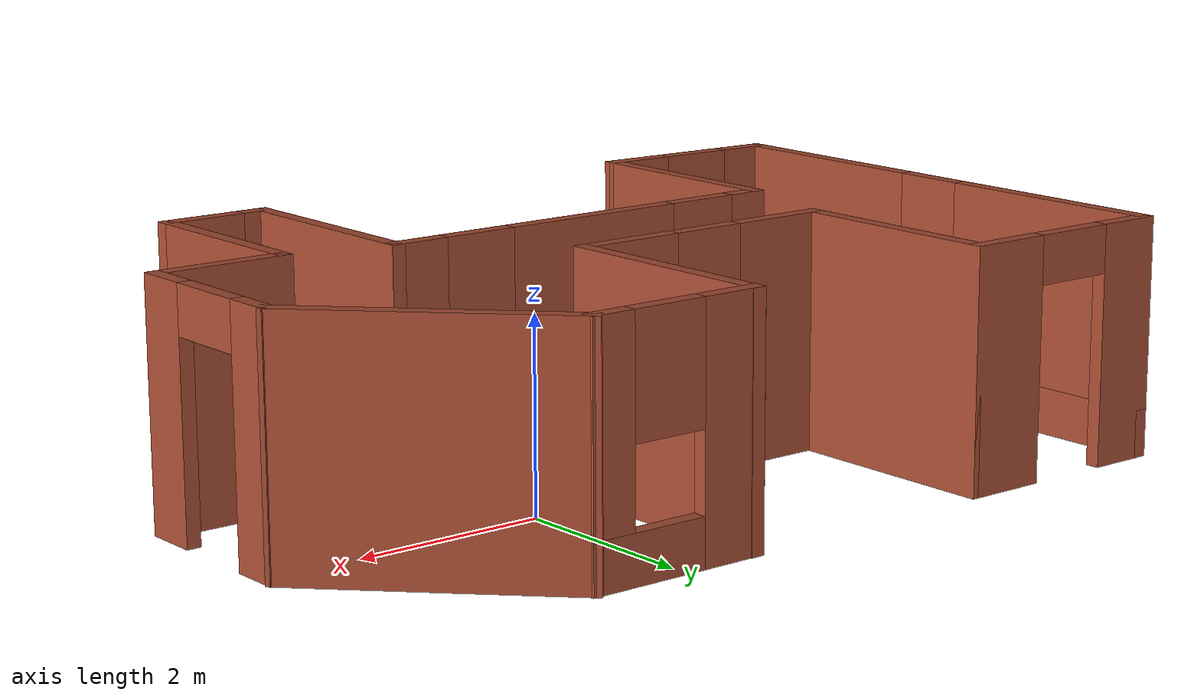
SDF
<?xml version='1.0'?>
<sdf version='1.6'>
  <model name='simple_building'>
    <pose frame=''>-1.5389 -0.836381 0 0 -0 0</pose>
    <link name='Wall_0'>
      <pose frame=''>-4.54793 0.019929 0 0 -0 1.5708</pose>
      <visual name='Wall_0_Visual_0'>
        <pose frame=''>-1.72098 0 1.25 0 -0 0</pose>
        <geometry>
          <box>
            <size>2.55803 0.15 2.5</size>
          </box>
        </geometry>
        <material>
          <script>
            <uri>file://media/materials/scripts/gazebo.material</uri>
            <name>Gazebo/Bricks</name>
          </script>
          <ambient>1 1 1 1</ambient>
        </material>
        <meta>
          <layer>0</layer>
        </meta>
      </visual>
      <collision name='Wall_0_Collision_0'>
        <geometry>
          <box>
            <size>2.55803 0.15 2.5</size>
          </box>
        </geometry>
        <pose frame=''>-1.72098 0 1.25 0 -0 0</pose>
      </collision>
      <visual name='Wall_0_Visual_1'>
        <pose frame=''>1.27902 0 0.25 0 -0 0</pose>
        <geometry>
          <box>
            <size>3.44197 0.15 0.5</size>
          </box>
        </geometry>
        <material>
          <script>
            <uri>file://media/materials/scripts/gazebo.material</uri>
            <name>Gazebo/Bricks</name>
          </script>
          <ambient>1 1 1 1</ambient>
        </material>
        <meta>
          <layer>0</layer>
        </meta>
      </visual>
      <collision name='Wall_0_Collision_1'>
        <geometry>
          <box>
            <size>3.44197 0.15 0.5</size>
          </box>
        </geometry>
        <pose frame=''>1.27902 0 0.25 0 -0 0</pose>
      </collision>
      <visual name='Wall_0_Visual_2'>
        <pose frame=''>1.67901 0 1.5 0 -0 0</pose>
        <geometry>
          <box>
            <size>2.64197 0.15 2</size>
          </box>
        </geometry>
        <material>
          <script>
            <uri>file://media/materials/scripts/gazebo.material</uri>
            <name>Gazebo/Bricks</name>
          </script>
          <ambient>1 1 1 1</ambient>
        </material>
        <meta>
          <layer>0</layer>
        </meta>
      </visual>
      <collision name='Wall_0_Collision_2'>
        <geometry>
          <box>
            <size>2.64197 0.15 2</size>
          </box>
        </geometry>
        <pose frame=''>1.67901 0 1.5 0 -0 0</pose>
      </collision>
      <visual name='Wall_0_Visual_3'>
        <pose frame=''>-0.04197 0 1.9 0 -0 0</pose>
        <geometry>
          <box>
            <size>0.8 0.15 1.2</size>
          </box>
        </geometry>
        <material>
          <script>
            <uri>file://media/materials/scripts/gazebo.material</uri>
            <name>Gazebo/Bricks</name>
          </script>
          <ambient>1 1 1 1</ambient>
        </material>
        <meta>
          <layer>0</layer>
        </meta>
      </visual>
      <collision name='Wall_0_Collision_3'>
        <geometry>
          <box>
            <size>0.8 0.15 1.2</size>
          </box>
        </geometry>
        <pose frame=''>-0.04197 0 1.9 0 -0 0</pose>
      </collision>
    </link>
    <link name='Wall_1'>
      <pose frame=''>-3.37293 2.94493 0 0 -0 0</pose>
      <visual name='Wall_1_Visual_0'>
        <pose frame=''>-0.894792 0 1.25 0 -0 0</pose>
        <geometry>
          <box>
            <size>0.710415 0.15 2.5</size>
          </box>
        </geometry>
        <material>
          <script>
            <uri>file://media/materials/scripts/gazebo.material</uri>
            <name>Gazebo/Bricks</name>
          </script>
          <ambient>1 1 1 1</ambient>
        </material>
        <meta>
          <layer>0</layer>
        </meta>
      </visual>
      <collision name='Wall_1_Collision_0'>
        <geometry>
          <box>
            <size>0.710415 0.15 2.5</size>
          </box>
        </geometry>
        <pose frame=''>-0.894792 0 1.25 0 -0 0</pose>
      </collision>
      <visual name='Wall_1_Visual_1'>
        <pose frame=''>0.805208 0 1.25 0 -0 0</pose>
        <geometry>
          <box>
            <size>0.889585 0.15 2.5</size>
          </box>
        </geometry>
        <material>
          <script>
            <uri>file://media/materials/scripts/gazebo.material</uri>
            <name>Gazebo/Bricks</name>
          </script>
          <ambient>1 1 1 1</ambient>
        </material>
        <meta>
          <layer>0</layer>
        </meta>
      </visual>
      <collision name='Wall_1_Collision_1'>
        <geometry>
          <box>
            <size>0.889585 0.15 2.5</size>
          </box>
        </geometry>
        <pose frame=''>0.805208 0 1.25 0 -0 0</pose>
      </collision>
      <visual name='Wall_1_Visual_2'>
        <pose frame=''>-0.089585 0 2.25 0 -0 0</pose>
        <geometry>
          <box>
            <size>0.9 0.15 0.5</size>
          </box>
        </geometry>
        <material>
          <script>
            <uri>file://media/materials/scripts/gazebo.material</uri>
            <name>Gazebo/Bricks</name>
          </script>
          <ambient>1 1 1 1</ambient>
        </material>
        <meta>
          <layer>0</layer>
        </meta>
      </visual>
      <collision name='Wall_1_Collision_2'>
        <geometry>
          <box>
            <size>0.9 0.15 0.5</size>
          </box>
        </geometry>
        <pose frame=''>-0.089585 0 2.25 0 -0 0</pose>
      </collision>
    </link>
    <link name='Wall_10'>
      <pose frame=''>2.61733 -3.02033 0 0 -0 3.14159</pose>
      <visual name='Wall_10_Visual_0'>
        <pose frame=''>-0.571183 0 1.25 0 -0 0</pose>
        <geometry>
          <box>
            <size>0.107634 0.15 2.5</size>
          </box>
        </geometry>
        <material>
          <script>
            <uri>file://media/materials/scripts/gazebo.material</uri>
            <name>Gazebo/Bricks</name>
          </script>
          <ambient>1 1 1 1</ambient>
        </material>
        <meta>
          <layer>0</layer>
        </meta>
      </visual>
      <collision name='Wall_10_Collision_0'>
        <geometry>
          <box>
            <size>0.107634 0.15 2.5</size>
          </box>
        </geometry>
        <pose frame=''>-0.571183 0 1.25 0 -0 0</pose>
      </collision>
      <visual name='Wall_10_Visual_1'>
        <pose frame=''>0.053817 0 0.25 0 -0 0</pose>
        <geometry>
          <box>
            <size>1.14237 0.15 0.5</size>
          </box>
        </geometry>
        <material>
          <script>
            <uri>file://media/materials/scripts/gazebo.material</uri>
            <name>Gazebo/Bricks</name>
          </script>
          <ambient>1 1 1 1</ambient>
        </material>
        <meta>
          <layer>0</layer>
        </meta>
      </visual>
      <collision name='Wall_10_Collision_1'>
        <geometry>
          <box>
            <size>1.14237 0.15 0.5</size>
          </box>
        </geometry>
        <pose frame=''>0.053817 0 0.25 0 -0 0</pose>
      </collision>
      <visual name='Wall_10_Visual_2'>
        <pose frame=''>0.453817 0 1.5 0 -0 0</pose>
        <geometry>
          <box>
            <size>0.342366 0.15 2</size>
          </box>
        </geometry>
        <material>
          <script>
            <uri>file://media/materials/scripts/gazebo.material</uri>
            <name>Gazebo/Bricks</name>
          </script>
          <ambient>1 1 1 1</ambient>
        </material>
        <meta>
          <layer>0</layer>
        </meta>
      </visual>
      <collision name='Wall_10_Collision_2'>
        <geometry>
          <box>
            <size>0.342366 0.15 2</size>
          </box>
        </geometry>
        <pose frame=''>0.453817 0 1.5 0 -0 0</pose>
      </collision>
      <visual name='Wall_10_Visual_3'>
        <pose frame=''>-0.117366 0 1.9 0 -0 0</pose>
        <geometry>
          <box>
            <size>0.8 0.15 1.2</size>
          </box>
        </geometry>
        <material>
          <script>
            <uri>file://media/materials/scripts/gazebo.material</uri>
            <name>Gazebo/Bricks</name>
          </script>
          <ambient>1 1 1 1</ambient>
        </material>
        <meta>
          <layer>0</layer>
        </meta>
      </visual>
      <collision name='Wall_10_Collision_3'>
        <geometry>
          <box>
            <size>0.8 0.15 1.2</size>
          </box>
        </geometry>
        <pose frame=''>-0.117366 0 1.9 0 -0 0</pose>
      </collision>
    </link>
    <link name='Wall_11'>
      <collision name='Wall_11_Collision'>
        <geometry>
          <box>
            <size>2.5 0.15 2.5</size>
          </box>
        </geometry>
        <pose frame=''>0 0 1.25 0 -0 0</pose>
      </collision>
      <visual name='Wall_11_Visual'>
        <pose frame=''>0 0 1.25 0 -0 0</pose>
        <geometry>
          <box>
            <size>2.5 0.15 2.5</size>
          </box>
        </geometry>
        <material>
          <script>
            <uri>file://media/materials/scripts/gazebo.material</uri>
            <name>Gazebo/Bricks</name>
          </script>
          <ambient>1 1 1 1</ambient>
        </material>
        <meta>
          <layer>0</layer>
        </meta>
      </visual>
      <pose frame=''>2.06733 -1.84533 0 0 -0 1.5708</pose>
    </link>
    <link name='Wall_12'>
      <pose frame=''>-0.232673 -0.670325 0 0 -0 3.14159</pose>
      <visual name='Wall_12_Visual_0'>
        <pose frame=''>-2.04966 0 1.25 0 -0 0</pose>
        <geometry>
          <box>
            <size>0.650672 0.15 2.5</size>
          </box>
        </geometry>
        <material>
          <script>
            <uri>file://media/materials/scripts/gazebo.material</uri>
            <name>Gazebo/Bricks</name>
          </script>
          <ambient>1 1 1 1</ambient>
        </material>
        <meta>
          <layer>0</layer>
        </meta>
      </visual>
      <collision name='Wall_12_Collision_0'>
        <geometry>
          <box>
            <size>0.650672 0.15 2.5</size>
          </box>
        </geometry>
        <pose frame=''>-2.04966 0 1.25 0 -0 0</pose>
      </collision>
      <visual name='Wall_12_Visual_1'>
        <pose frame=''>0.325336 0 0.25 0 -0 0</pose>
        <geometry>
          <box>
            <size>4.09933 0.15 0.5</size>
          </box>
        </geometry>
        <material>
          <script>
            <uri>file://media/materials/scripts/gazebo.material</uri>
            <name>Gazebo/Bricks</name>
          </script>
          <ambient>1 1 1 1</ambient>
        </material>
        <meta>
          <layer>0</layer>
        </meta>
      </visual>
      <collision name='Wall_12_Collision_1'>
        <geometry>
          <box>
            <size>4.09933 0.15 0.5</size>
          </box>
        </geometry>
        <pose frame=''>0.325336 0 0.25 0 -0 0</pose>
      </collision>
      <visual name='Wall_12_Visual_2'>
        <pose frame=''>0.098849 0 1.5 0 -0 0</pose>
        <geometry>
          <box>
            <size>2.04635 0.15 2</size>
          </box>
        </geometry>
        <material>
          <script>
            <uri>file://media/materials/scripts/gazebo.material</uri>
            <name>Gazebo/Bricks</name>
          </script>
          <ambient>1 1 1 1</ambient>
        </material>
        <meta>
          <layer>0</layer>
        </meta>
      </visual>
      <collision name='Wall_12_Collision_2'>
        <geometry>
          <box>
            <size>2.04635 0.15 2</size>
          </box>
        </geometry>
        <pose frame=''>0.098849 0 1.5 0 -0 0</pose>
      </collision>
      <visual name='Wall_12_Visual_3'>
        <pose frame=''>2.14851 0 1.5 0 -0 0</pose>
        <geometry>
          <box>
            <size>0.452974 0.15 2</size>
          </box>
        </geometry>
        <material>
          <script>
            <uri>file://media/materials/scripts/gazebo.material</uri>
            <name>Gazebo/Bricks</name>
          </script>
          <ambient>1 1 1 1</ambient>
        </material>
        <meta>
          <layer>0</layer>
        </meta>
      </visual>
      <collision name='Wall_12_Collision_3'>
        <geometry>
          <box>
            <size>0.452974 0.15 2</size>
          </box>
        </geometry>
        <pose frame=''>2.14851 0 1.5 0 -0 0</pose>
      </collision>
      <visual name='Wall_12_Visual_4'>
        <pose frame=''>-1.32433 0 1.9 0 -0 0</pose>
        <geometry>
          <box>
            <size>0.8 0.15 1.2</size>
          </box>
        </geometry>
        <material>
          <script>
            <uri>file://media/materials/scripts/gazebo.material</uri>
            <name>Gazebo/Bricks</name>
          </script>
          <ambient>1 1 1 1</ambient>
        </material>
        <meta>
          <layer>0</layer>
        </meta>
      </visual>
      <collision name='Wall_12_Collision_4'>
        <geometry>
          <box>
            <size>0.8 0.15 1.2</size>
          </box>
        </geometry>
        <pose frame=''>-1.32433 0 1.9 0 -0 0</pose>
      </collision>
      <visual name='Wall_12_Visual_5'>
        <pose frame=''>1.52203 0 1.9 0 -0 0</pose>
        <geometry>
          <box>
            <size>0.8 0.15 1.2</size>
          </box>
        </geometry>
        <material>
          <script>
            <uri>file://media/materials/scripts/gazebo.material</uri>
            <name>Gazebo/Bricks</name>
          </script>
          <ambient>1 1 1 1</ambient>
        </material>
        <meta>
          <layer>0</layer>
        </meta>
      </visual>
      <collision name='Wall_12_Collision_5'>
        <geometry>
          <box>
            <size>0.8 0.15 1.2</size>
          </box>
        </geometry>
        <pose frame=''>1.52203 0 1.9 0 -0 0</pose>
      </collision>
    </link>
    <link name='Wall_13'>
      <collision name='Wall_13_Collision'>
        <geometry>
          <box>
            <size>2.5 0.15 2.5</size>
          </box>
        </geometry>
        <pose frame=''>0 0 1.25 0 -0 0</pose>
      </collision>
      <visual name='Wall_13_Visual'>
        <pose frame=''>0 0 1.25 0 -0 0</pose>
        <geometry>
          <box>
            <size>2.5 0.15 2.5</size>
          </box>
        </geometry>
        <material>
          <script>
            <uri>file://media/materials/scripts/gazebo.material</uri>
            <name>Gazebo/Bricks</name>
          </script>
          <ambient>1 1 1 1</ambient>
        </material>
        <meta>
          <layer>0</layer>
        </meta>
      </visual>
      <pose frame=''>-2.53267 -1.84533 0 0 0 -1.5708</pose>
    </link>
    <link name='Wall_14'>
      <pose frame=''>-3.5403 -2.9627 0 0 -0 3.08446</pose>
      <visual name='Wall_14_Visual_0'>
        <pose frame=''>-0.700738 0 1.25 0 -0 0</pose>
        <geometry>
          <box>
            <size>0.76707 0.15 2.5</size>
          </box>
        </geometry>
        <material>
          <script>
            <uri>file://media/materials/scripts/gazebo.material</uri>
            <name>Gazebo/Bricks</name>
          </script>
          <ambient>1 1 1 1</ambient>
        </material>
        <meta>
          <layer>0</layer>
        </meta>
      </visual>
      <collision name='Wall_14_Collision_0'>
        <geometry>
          <box>
            <size>0.76707 0.15 2.5</size>
          </box>
        </geometry>
        <pose frame=''>-0.700738 0 1.25 0 -0 0</pose>
      </collision>
      <visual name='Wall_14_Visual_1'>
        <pose frame=''>0.383535 0 0.25 0 -0 0</pose>
        <geometry>
          <box>
            <size>1.40148 0.15 0.5</size>
          </box>
        </geometry>
        <material>
          <script>
            <uri>file://media/materials/scripts/gazebo.material</uri>
            <name>Gazebo/Bricks</name>
          </script>
          <ambient>1 1 1 1</ambient>
        </material>
        <meta>
          <layer>0</layer>
        </meta>
      </visual>
      <collision name='Wall_14_Collision_1'>
        <geometry>
          <box>
            <size>1.40148 0.15 0.5</size>
          </box>
        </geometry>
        <pose frame=''>0.383535 0 0.25 0 -0 0</pose>
      </collision>
      <visual name='Wall_14_Visual_2'>
        <pose frame=''>0.783535 0 1.5 0 -0 0</pose>
        <geometry>
          <box>
            <size>0.601477 0.15 2</size>
          </box>
        </geometry>
        <material>
          <script>
            <uri>file://media/materials/scripts/gazebo.material</uri>
            <name>Gazebo/Bricks</name>
          </script>
          <ambient>1 1 1 1</ambient>
        </material>
        <meta>
          <layer>0</layer>
        </meta>
      </visual>
      <collision name='Wall_14_Collision_2'>
        <geometry>
          <box>
            <size>0.601477 0.15 2</size>
          </box>
        </geometry>
        <pose frame=''>0.783535 0 1.5 0 -0 0</pose>
      </collision>
      <visual name='Wall_14_Visual_3'>
        <pose frame=''>0.082797 0 1.9 0 -0 0</pose>
        <geometry>
          <box>
            <size>0.8 0.15 1.2</size>
          </box>
        </geometry>
        <material>
          <script>
            <uri>file://media/materials/scripts/gazebo.material</uri>
            <name>Gazebo/Bricks</name>
          </script>
          <ambient>1 1 1 1</ambient>
        </material>
        <meta>
          <layer>0</layer>
        </meta>
      </visual>
      <collision name='Wall_14_Collision_3'>
        <geometry>
          <box>
            <size>0.8 0.15 1.2</size>
          </box>
        </geometry>
        <pose frame=''>0.082797 0 1.9 0 -0 0</pose>
      </collision>
    </link>
    <link name='Wall_2'>
      <collision name='Wall_2_Collision'>
        <geometry>
          <box>
            <size>2.5 0.15 2.5</size>
          </box>
        </geometry>
        <pose frame=''>0 0 1.25 0 -0 0</pose>
      </collision>
      <visual name='Wall_2_Visual'>
        <pose frame=''>0 0 1.25 0 -0 0</pose>
        <geometry>
          <box>
            <size>2.5 0.15 2.5</size>
          </box>
        </geometry>
        <material>
          <script>
            <uri>file://media/materials/scripts/gazebo.material</uri>
            <name>Gazebo/Bricks</name>
          </script>
          <ambient>1 1 1 1</ambient>
        </material>
        <meta>
          <layer>0</layer>
        </meta>
      </visual>
      <pose frame=''>-2.19793 1.76993 0 0 0 -1.5708</pose>
    </link>
    <link name='Wall_3'>
      <pose frame=''>-0.757212 0.594929 0 0 -0 0</pose>
      <visual name='Wall_3_Visual_0'>
        <pose frame=''>-0.958489 0 1.25 0 -0 0</pose>
        <geometry>
          <box>
            <size>1.11445 0.15 2.5</size>
          </box>
        </geometry>
        <material>
          <script>
            <uri>file://media/materials/scripts/gazebo.material</uri>
            <name>Gazebo/Bricks</name>
          </script>
          <ambient>1 1 1 1</ambient>
        </material>
        <meta>
          <layer>0</layer>
        </meta>
      </visual>
      <collision name='Wall_3_Collision_0'>
        <geometry>
          <box>
            <size>1.11445 0.15 2.5</size>
          </box>
        </geometry>
        <pose frame=''>-0.958489 0 1.25 0 -0 0</pose>
      </collision>
      <visual name='Wall_3_Visual_1'>
        <pose frame=''>0.557226 0 0.25 0 -0 0</pose>
        <geometry>
          <box>
            <size>1.91698 0.15 0.5</size>
          </box>
        </geometry>
        <material>
          <script>
            <uri>file://media/materials/scripts/gazebo.material</uri>
            <name>Gazebo/Bricks</name>
          </script>
          <ambient>1 1 1 1</ambient>
        </material>
        <meta>
          <layer>0</layer>
        </meta>
      </visual>
      <collision name='Wall_3_Collision_1'>
        <geometry>
          <box>
            <size>1.91698 0.15 0.5</size>
          </box>
        </geometry>
        <pose frame=''>0.557226 0 0.25 0 -0 0</pose>
      </collision>
      <visual name='Wall_3_Visual_2'>
        <pose frame=''>0.957226 0 1.5 0 -0 0</pose>
        <geometry>
          <box>
            <size>1.11698 0.15 2</size>
          </box>
        </geometry>
        <material>
          <script>
            <uri>file://media/materials/scripts/gazebo.material</uri>
            <name>Gazebo/Bricks</name>
          </script>
          <ambient>1 1 1 1</ambient>
        </material>
        <meta>
          <layer>0</layer>
        </meta>
      </visual>
      <collision name='Wall_3_Collision_2'>
        <geometry>
          <box>
            <size>1.11698 0.15 2</size>
          </box>
        </geometry>
        <pose frame=''>0.957226 0 1.5 0 -0 0</pose>
      </collision>
      <visual name='Wall_3_Visual_3'>
        <pose frame=''>-0.001263 0 1.9 0 -0 0</pose>
        <geometry>
          <box>
            <size>0.8 0.15 1.2</size>
          </box>
        </geometry>
        <material>
          <script>
            <uri>file://media/materials/scripts/gazebo.material</uri>
            <name>Gazebo/Bricks</name>
          </script>
          <ambient>1 1 1 1</ambient>
        </material>
        <meta>
          <layer>0</layer>
        </meta>
      </visual>
      <collision name='Wall_3_Collision_3'>
        <geometry>
          <box>
            <size>0.8 0.15 1.2</size>
          </box>
        </geometry>
        <pose frame=''>-0.001263 0 1.9 0 -0 0</pose>
      </collision>
    </link>
    <link name='Wall_4'>
      <collision name='Wall_4_Collision'>
        <geometry>
          <box>
            <size>2.54873 0.15 2.5</size>
          </box>
        </geometry>
        <pose frame=''>0 0 1.25 0 -0 0</pose>
      </collision>
      <visual name='Wall_4_Visual'>
        <pose frame=''>0 0 1.25 0 -0 0</pose>
        <geometry>
          <box>
            <size>2.54873 0.15 2.5</size>
          </box>
        </geometry>
        <material>
          <script>
            <uri>file://media/materials/scripts/gazebo.material</uri>
            <name>Gazebo/Bricks</name>
          </script>
          <ambient>1 1 1 1</ambient>
        </material>
        <meta>
          <layer>0</layer>
        </meta>
      </visual>
      <pose frame=''>0.73891 1.7942 0 0 -0 1.58326</pose>
    </link>
    <link name='Wall_5'>
      <pose frame=''>1.62703 2.98538 0 0 -0 0</pose>
      <visual name='Wall_5_Visual_0'>
        <pose frame=''>-0.633435 0 1.25 0 -0 0</pose>
        <geometry>
          <box>
            <size>0.705449 0.15 2.5</size>
          </box>
        </geometry>
        <material>
          <script>
            <uri>file://media/materials/scripts/gazebo.material</uri>
            <name>Gazebo/Bricks</name>
          </script>
          <ambient>1 1 1 1</ambient>
        </material>
        <meta>
          <layer>0</layer>
        </meta>
      </visual>
      <collision name='Wall_5_Collision_0'>
        <geometry>
          <box>
            <size>0.705449 0.15 2.5</size>
          </box>
        </geometry>
        <pose frame=''>-0.633435 0 1.25 0 -0 0</pose>
      </collision>
      <visual name='Wall_5_Visual_1'>
        <pose frame=''>0.352725 0 0.25 0 -0 0</pose>
        <geometry>
          <box>
            <size>1.26687 0.15 0.5</size>
          </box>
        </geometry>
        <material>
          <script>
            <uri>file://media/materials/scripts/gazebo.material</uri>
            <name>Gazebo/Bricks</name>
          </script>
          <ambient>1 1 1 1</ambient>
        </material>
        <meta>
          <layer>0</layer>
        </meta>
      </visual>
      <collision name='Wall_5_Collision_1'>
        <geometry>
          <box>
            <size>1.26687 0.15 0.5</size>
          </box>
        </geometry>
        <pose frame=''>0.352725 0 0.25 0 -0 0</pose>
      </collision>
      <visual name='Wall_5_Visual_2'>
        <pose frame=''>0.752725 0 1.5 0 -0 0</pose>
        <geometry>
          <box>
            <size>0.466869 0.15 2</size>
          </box>
        </geometry>
        <material>
          <script>
            <uri>file://media/materials/scripts/gazebo.material</uri>
            <name>Gazebo/Bricks</name>
          </script>
          <ambient>1 1 1 1</ambient>
        </material>
        <meta>
          <layer>0</layer>
        </meta>
      </visual>
      <collision name='Wall_5_Collision_2'>
        <geometry>
          <box>
            <size>0.466869 0.15 2</size>
          </box>
        </geometry>
        <pose frame=''>0.752725 0 1.5 0 -0 0</pose>
      </collision>
      <visual name='Wall_5_Visual_3'>
        <pose frame=''>0.11929 0 1.9 0 -0 0</pose>
        <geometry>
          <box>
            <size>0.8 0.15 1.2</size>
          </box>
        </geometry>
        <material>
          <script>
            <uri>file://media/materials/scripts/gazebo.material</uri>
            <name>Gazebo/Bricks</name>
          </script>
          <ambient>1 1 1 1</ambient>
        </material>
        <meta>
          <layer>0</layer>
        </meta>
      </visual>
      <collision name='Wall_5_Collision_3'>
        <geometry>
          <box>
            <size>0.8 0.15 1.2</size>
          </box>
        </geometry>
        <pose frame=''>0.11929 0 1.9 0 -0 0</pose>
      </collision>
    </link>
    <link name='Wall_6'>
      <collision name='Wall_6_Collision'>
        <geometry>
          <box>
            <size>2.98097 0.15 2.5</size>
          </box>
        </geometry>
        <pose frame=''>0 0 1.25 0 -0 0</pose>
      </collision>
      <visual name='Wall_6_Visual'>
        <pose frame=''>0 0 1.25 0 -0 0</pose>
        <geometry>
          <box>
            <size>2.98097 0.15 2.5</size>
          </box>
        </geometry>
        <material>
          <script>
            <uri>file://media/materials/scripts/gazebo.material</uri>
            <name>Gazebo/Bricks</name>
          </script>
          <ambient>1 1 1 1</ambient>
        </material>
        <meta>
          <layer>0</layer>
        </meta>
      </visual>
      <pose frame=''>3.53368 1.97917 0 0 0 -0.798842</pose>
    </link>
    <link name='Wall_7'>
      <pose frame=''>4.52108 0.004675 0 0 0 -1.5708</pose>
      <visual name='Wall_7_Visual_0'>
        <pose frame=''>-0.740106 0 1.25 0 -0 0</pose>
        <geometry>
          <box>
            <size>0.519789 0.15 2.5</size>
          </box>
        </geometry>
        <material>
          <script>
            <uri>file://media/materials/scripts/gazebo.material</uri>
            <name>Gazebo/Bricks</name>
          </script>
          <ambient>1 1 1 1</ambient>
        </material>
        <meta>
          <layer>0</layer>
        </meta>
      </visual>
      <collision name='Wall_7_Collision_0'>
        <geometry>
          <box>
            <size>0.519789 0.15 2.5</size>
          </box>
        </geometry>
        <pose frame=''>-0.740106 0 1.25 0 -0 0</pose>
      </collision>
      <visual name='Wall_7_Visual_1'>
        <pose frame=''>0.709894 0 1.25 0 -0 0</pose>
        <geometry>
          <box>
            <size>0.580211 0.15 2.5</size>
          </box>
        </geometry>
        <material>
          <script>
            <uri>file://media/materials/scripts/gazebo.material</uri>
            <name>Gazebo/Bricks</name>
          </script>
          <ambient>1 1 1 1</ambient>
        </material>
        <meta>
          <layer>0</layer>
        </meta>
      </visual>
      <collision name='Wall_7_Collision_1'>
        <geometry>
          <box>
            <size>0.580211 0.15 2.5</size>
          </box>
        </geometry>
        <pose frame=''>0.709894 0 1.25 0 -0 0</pose>
      </collision>
      <visual name='Wall_7_Visual_2'>
        <pose frame=''>-0.030211 0 2.25 0 -0 0</pose>
        <geometry>
          <box>
            <size>0.9 0.15 0.5</size>
          </box>
        </geometry>
        <material>
          <script>
            <uri>file://media/materials/scripts/gazebo.material</uri>
            <name>Gazebo/Bricks</name>
          </script>
          <ambient>1 1 1 1</ambient>
        </material>
        <meta>
          <layer>0</layer>
        </meta>
      </visual>
      <collision name='Wall_7_Collision_2'>
        <geometry>
          <box>
            <size>0.9 0.15 0.5</size>
          </box>
        </geometry>
        <pose frame=''>-0.030211 0 2.25 0 -0 0</pose>
      </collision>
    </link>
    <link name='Wall_8'>
      <collision name='Wall_8_Collision'>
        <geometry>
          <box>
            <size>1.50375 0.15 2.5</size>
          </box>
        </geometry>
        <pose frame=''>0 0 1.25 0 -0 0</pose>
      </collision>
      <visual name='Wall_8_Visual'>
        <pose frame=''>0 0 1.25 0 -0 0</pose>
        <geometry>
          <box>
            <size>1.50375 0.15 2.5</size>
          </box>
        </geometry>
        <material>
          <script>
            <uri>file://media/materials/scripts/gazebo.material</uri>
            <name>Gazebo/Bricks</name>
          </script>
          <ambient>1 1 1 1</ambient>
        </material>
        <meta>
          <layer>0</layer>
        </meta>
      </visual>
      <pose frame=''>3.8442 -0.920325 0 0 -0 3.14159</pose>
    </link>
    <link name='Wall_9'>
      <collision name='Wall_9_Collision'>
        <geometry>
          <box>
            <size>2.25 0.15 2.5</size>
          </box>
        </geometry>
        <pose frame=''>0 0 1.25 0 -0 0</pose>
      </collision>
      <visual name='Wall_9_Visual'>
        <pose frame=''>0 0 1.25 0 -0 0</pose>
        <geometry>
          <box>
            <size>2.25 0.15 2.5</size>
          </box>
        </geometry>
        <material>
          <script>
            <uri>file://media/materials/scripts/gazebo.material</uri>
            <name>Gazebo/Bricks</name>
          </script>
          <ambient>1 1 1 1</ambient>
        </material>
        <meta>
          <layer>0</layer>
        </meta>
      </visual>
      <pose frame=''>3.16733 -1.97033 0 0 0 -1.5708</pose>
    </link>
    <static>1</static>
  </model>
</sdf>
